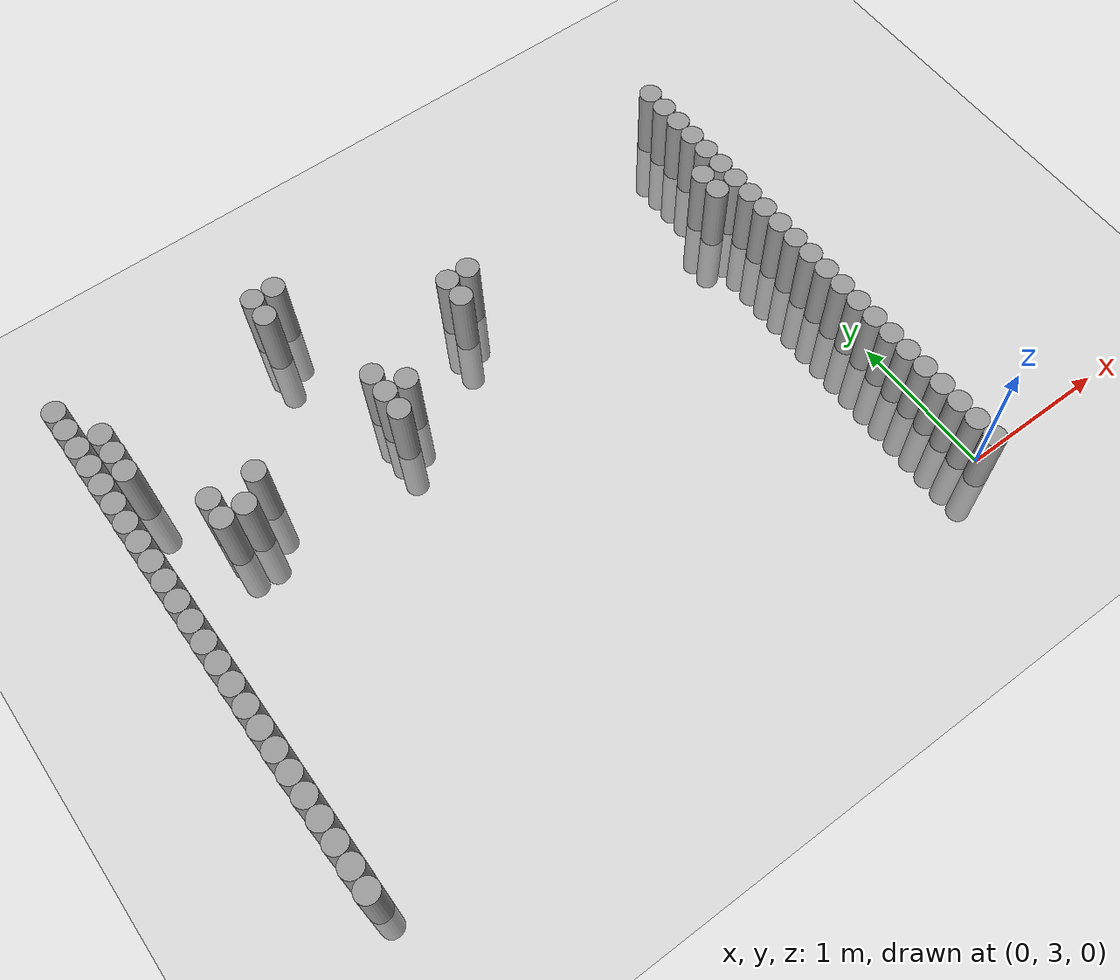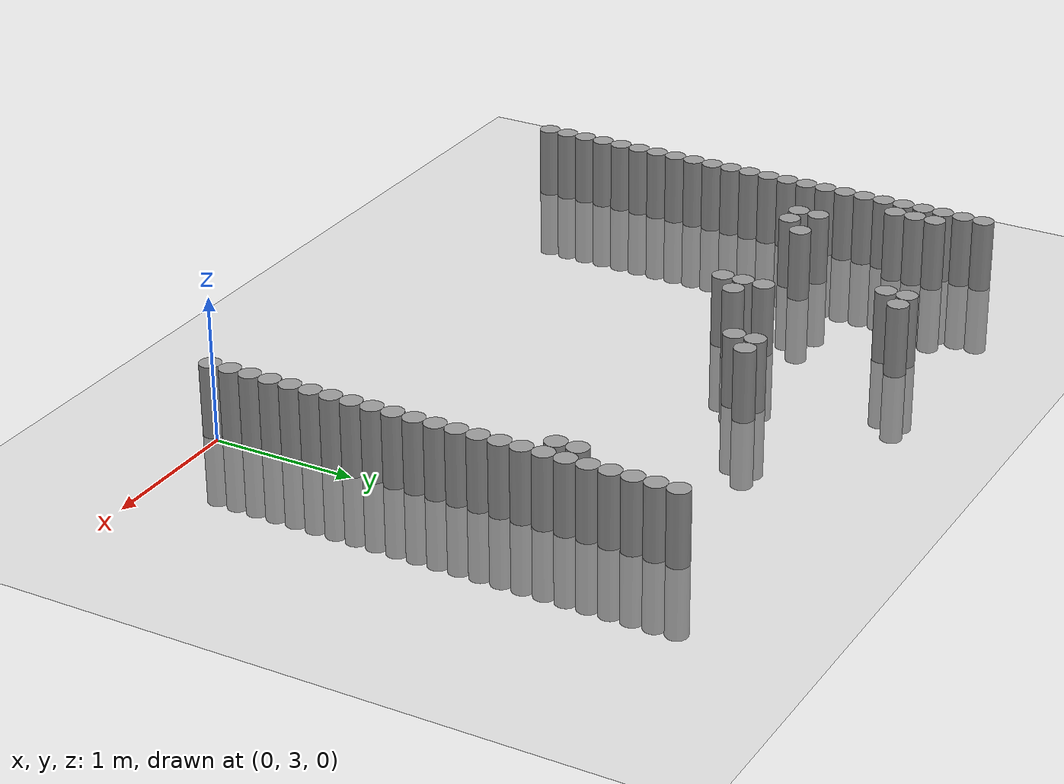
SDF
<sdf version="1.6">
 <world name="default">
  <model name="ground_plane">
   <static>1</static>
   <link name="link">
    <collision name="collision">
     <geometry><plane><normal>0 0 1</normal><size>100 100</size></plane></geometry>
     <surface><friction><ode><mu>100</mu><mu2>50</mu2></ode></friction></surface>
    </collision>
    <visual name="visual">
     <cast_shadows>0</cast_shadows>
     <geometry><plane><normal>0 0 1</normal><size>100 100</size></plane></geometry>
     <material>
      <script><uri>file://media/materials/scripts/gazebo.material</uri><name>Gazebo/Grey</name></script>
     </material>
    </visual>
   </link>
  </model>
  <model name="unit_cylinder_66">
   <pose>-0.075000 2.925000 0.000000 0.000000 0.000000 0.000000</pose>
   <link name="link">
    <inertial>
     <mass>1</mass>
     <inertia><ixx>0.145833</ixx><ixy>0</ixy><ixz>0</ixz><iyy>0.145833</iyy><iyz>0</iyz><izz>0.125</izz></inertia>
    </inertial>
    <collision name="collision">
     <geometry><cylinder><radius>0.075000</radius><length>1</length></cylinder></geometry>
    </collision>
    <visual name="visual">
     <geometry><cylinder><radius>0.075000</radius><length>1</length></cylinder></geometry>
     <material>
      <script><name>Gazebo/Grey</name><uri>file://media/materials/scripts/gazebo.material</uri></script>
     </material>
    </visual>
   </link>
  </model>
  <model name="unit_cylinder_67">
   <pose>-4.425000 2.925000 0.000000 0.000000 0.000000 0.000000</pose>
   <link name="link">
    <inertial>
     <mass>1</mass>
     <inertia><ixx>0.145833</ixx><ixy>0</ixy><ixz>0</ixz><iyy>0.145833</iyy><iyz>0</iyz><izz>0.125</izz></inertia>
    </inertial>
    <collision name="collision">
     <geometry><cylinder><radius>0.075000</radius><length>1</length></cylinder></geometry>
    </collision>
    <visual name="visual">
     <geometry><cylinder><radius>0.075000</radius><length>1</length></cylinder></geometry>
     <material>
      <script><name>Gazebo/Grey</name><uri>file://media/materials/scripts/gazebo.material</uri></script>
     </material>
    </visual>
   </link>
  </model>
  <model name="unit_cylinder_68">
   <pose>-0.075000 3.075000 0.000000 0.000000 0.000000 0.000000</pose>
   <link name="link">
    <inertial>
     <mass>1</mass>
     <inertia><ixx>0.145833</ixx><ixy>0</ixy><ixz>0</ixz><iyy>0.145833</iyy><iyz>0</iyz><izz>0.125</izz></inertia>
    </inertial>
    <collision name="collision">
     <geometry><cylinder><radius>0.075000</radius><length>1</length></cylinder></geometry>
    </collision>
    <visual name="visual">
     <geometry><cylinder><radius>0.075000</radius><length>1</length></cylinder></geometry>
     <material>
      <script><name>Gazebo/Grey</name><uri>file://media/materials/scripts/gazebo.material</uri></script>
     </material>
    </visual>
   </link>
  </model>
  <model name="unit_cylinder_69">
   <pose>-4.425000 3.075000 0.000000 0.000000 0.000000 0.000000</pose>
   <link name="link">
    <inertial>
     <mass>1</mass>
     <inertia><ixx>0.145833</ixx><ixy>0</ixy><ixz>0</ixz><iyy>0.145833</iyy><iyz>0</iyz><izz>0.125</izz></inertia>
    </inertial>
    <collision name="collision">
     <geometry><cylinder><radius>0.075000</radius><length>1</length></cylinder></geometry>
    </collision>
    <visual name="visual">
     <geometry><cylinder><radius>0.075000</radius><length>1</length></cylinder></geometry>
     <material>
      <script><name>Gazebo/Grey</name><uri>file://media/materials/scripts/gazebo.material</uri></script>
     </material>
    </visual>
   </link>
  </model>
  <model name="unit_cylinder_70">
   <pose>-0.075000 3.225000 0.000000 0.000000 0.000000 0.000000</pose>
   <link name="link">
    <inertial>
     <mass>1</mass>
     <inertia><ixx>0.145833</ixx><ixy>0</ixy><ixz>0</ixz><iyy>0.145833</iyy><iyz>0</iyz><izz>0.125</izz></inertia>
    </inertial>
    <collision name="collision">
     <geometry><cylinder><radius>0.075000</radius><length>1</length></cylinder></geometry>
    </collision>
    <visual name="visual">
     <geometry><cylinder><radius>0.075000</radius><length>1</length></cylinder></geometry>
     <material>
      <script><name>Gazebo/Grey</name><uri>file://media/materials/scripts/gazebo.material</uri></script>
     </material>
    </visual>
   </link>
  </model>
  <model name="unit_cylinder_71">
   <pose>-4.425000 3.225000 0.000000 0.000000 0.000000 0.000000</pose>
   <link name="link">
    <inertial>
     <mass>1</mass>
     <inertia><ixx>0.145833</ixx><ixy>0</ixy><ixz>0</ixz><iyy>0.145833</iyy><iyz>0</iyz><izz>0.125</izz></inertia>
    </inertial>
    <collision name="collision">
     <geometry><cylinder><radius>0.075000</radius><length>1</length></cylinder></geometry>
    </collision>
    <visual name="visual">
     <geometry><cylinder><radius>0.075000</radius><length>1</length></cylinder></geometry>
     <material>
      <script><name>Gazebo/Grey</name><uri>file://media/materials/scripts/gazebo.material</uri></script>
     </material>
    </visual>
   </link>
  </model>
  <model name="unit_cylinder_72">
   <pose>-0.075000 3.375000 0.000000 0.000000 0.000000 0.000000</pose>
   <link name="link">
    <inertial>
     <mass>1</mass>
     <inertia><ixx>0.145833</ixx><ixy>0</ixy><ixz>0</ixz><iyy>0.145833</iyy><iyz>0</iyz><izz>0.125</izz></inertia>
    </inertial>
    <collision name="collision">
     <geometry><cylinder><radius>0.075000</radius><length>1</length></cylinder></geometry>
    </collision>
    <visual name="visual">
     <geometry><cylinder><radius>0.075000</radius><length>1</length></cylinder></geometry>
     <material>
      <script><name>Gazebo/Grey</name><uri>file://media/materials/scripts/gazebo.material</uri></script>
     </material>
    </visual>
   </link>
  </model>
  <model name="unit_cylinder_73">
   <pose>-4.425000 3.375000 0.000000 0.000000 0.000000 0.000000</pose>
   <link name="link">
    <inertial>
     <mass>1</mass>
     <inertia><ixx>0.145833</ixx><ixy>0</ixy><ixz>0</ixz><iyy>0.145833</iyy><iyz>0</iyz><izz>0.125</izz></inertia>
    </inertial>
    <collision name="collision">
     <geometry><cylinder><radius>0.075000</radius><length>1</length></cylinder></geometry>
    </collision>
    <visual name="visual">
     <geometry><cylinder><radius>0.075000</radius><length>1</length></cylinder></geometry>
     <material>
      <script><name>Gazebo/Grey</name><uri>file://media/materials/scripts/gazebo.material</uri></script>
     </material>
    </visual>
   </link>
  </model>
  <model name="unit_cylinder_74">
   <pose>-0.075000 3.525000 0.000000 0.000000 0.000000 0.000000</pose>
   <link name="link">
    <inertial>
     <mass>1</mass>
     <inertia><ixx>0.145833</ixx><ixy>0</ixy><ixz>0</ixz><iyy>0.145833</iyy><iyz>0</iyz><izz>0.125</izz></inertia>
    </inertial>
    <collision name="collision">
     <geometry><cylinder><radius>0.075000</radius><length>1</length></cylinder></geometry>
    </collision>
    <visual name="visual">
     <geometry><cylinder><radius>0.075000</radius><length>1</length></cylinder></geometry>
     <material>
      <script><name>Gazebo/Grey</name><uri>file://media/materials/scripts/gazebo.material</uri></script>
     </material>
    </visual>
   </link>
  </model>
  <model name="unit_cylinder_75">
   <pose>-4.425000 3.525000 0.000000 0.000000 0.000000 0.000000</pose>
   <link name="link">
    <inertial>
     <mass>1</mass>
     <inertia><ixx>0.145833</ixx><ixy>0</ixy><ixz>0</ixz><iyy>0.145833</iyy><iyz>0</iyz><izz>0.125</izz></inertia>
    </inertial>
    <collision name="collision">
     <geometry><cylinder><radius>0.075000</radius><length>1</length></cylinder></geometry>
    </collision>
    <visual name="visual">
     <geometry><cylinder><radius>0.075000</radius><length>1</length></cylinder></geometry>
     <material>
      <script><name>Gazebo/Grey</name><uri>file://media/materials/scripts/gazebo.material</uri></script>
     </material>
    </visual>
   </link>
  </model>
  <model name="unit_cylinder_76">
   <pose>-0.075000 3.675000 0.000000 0.000000 0.000000 0.000000</pose>
   <link name="link">
    <inertial>
     <mass>1</mass>
     <inertia><ixx>0.145833</ixx><ixy>0</ixy><ixz>0</ixz><iyy>0.145833</iyy><iyz>0</iyz><izz>0.125</izz></inertia>
    </inertial>
    <collision name="collision">
     <geometry><cylinder><radius>0.075000</radius><length>1</length></cylinder></geometry>
    </collision>
    <visual name="visual">
     <geometry><cylinder><radius>0.075000</radius><length>1</length></cylinder></geometry>
     <material>
      <script><name>Gazebo/Grey</name><uri>file://media/materials/scripts/gazebo.material</uri></script>
     </material>
    </visual>
   </link>
  </model>
  <model name="unit_cylinder_77">
   <pose>-4.425000 3.675000 0.000000 0.000000 0.000000 0.000000</pose>
   <link name="link">
    <inertial>
     <mass>1</mass>
     <inertia><ixx>0.145833</ixx><ixy>0</ixy><ixz>0</ixz><iyy>0.145833</iyy><iyz>0</iyz><izz>0.125</izz></inertia>
    </inertial>
    <collision name="collision">
     <geometry><cylinder><radius>0.075000</radius><length>1</length></cylinder></geometry>
    </collision>
    <visual name="visual">
     <geometry><cylinder><radius>0.075000</radius><length>1</length></cylinder></geometry>
     <material>
      <script><name>Gazebo/Grey</name><uri>file://media/materials/scripts/gazebo.material</uri></script>
     </material>
    </visual>
   </link>
  </model>
  <model name="unit_cylinder_78">
   <pose>-0.075000 3.825000 0.000000 0.000000 0.000000 0.000000</pose>
   <link name="link">
    <inertial>
     <mass>1</mass>
     <inertia><ixx>0.145833</ixx><ixy>0</ixy><ixz>0</ixz><iyy>0.145833</iyy><iyz>0</iyz><izz>0.125</izz></inertia>
    </inertial>
    <collision name="collision">
     <geometry><cylinder><radius>0.075000</radius><length>1</length></cylinder></geometry>
    </collision>
    <visual name="visual">
     <geometry><cylinder><radius>0.075000</radius><length>1</length></cylinder></geometry>
     <material>
      <script><name>Gazebo/Grey</name><uri>file://media/materials/scripts/gazebo.material</uri></script>
     </material>
    </visual>
   </link>
  </model>
  <model name="unit_cylinder_79">
   <pose>-4.425000 3.825000 0.000000 0.000000 0.000000 0.000000</pose>
   <link name="link">
    <inertial>
     <mass>1</mass>
     <inertia><ixx>0.145833</ixx><ixy>0</ixy><ixz>0</ixz><iyy>0.145833</iyy><iyz>0</iyz><izz>0.125</izz></inertia>
    </inertial>
    <collision name="collision">
     <geometry><cylinder><radius>0.075000</radius><length>1</length></cylinder></geometry>
    </collision>
    <visual name="visual">
     <geometry><cylinder><radius>0.075000</radius><length>1</length></cylinder></geometry>
     <material>
      <script><name>Gazebo/Grey</name><uri>file://media/materials/scripts/gazebo.material</uri></script>
     </material>
    </visual>
   </link>
  </model>
  <model name="unit_cylinder_80">
   <pose>-0.075000 3.975000 0.000000 0.000000 0.000000 0.000000</pose>
   <link name="link">
    <inertial>
     <mass>1</mass>
     <inertia><ixx>0.145833</ixx><ixy>0</ixy><ixz>0</ixz><iyy>0.145833</iyy><iyz>0</iyz><izz>0.125</izz></inertia>
    </inertial>
    <collision name="collision">
     <geometry><cylinder><radius>0.075000</radius><length>1</length></cylinder></geometry>
    </collision>
    <visual name="visual">
     <geometry><cylinder><radius>0.075000</radius><length>1</length></cylinder></geometry>
     <material>
      <script><name>Gazebo/Grey</name><uri>file://media/materials/scripts/gazebo.material</uri></script>
     </material>
    </visual>
   </link>
  </model>
  <model name="unit_cylinder_81">
   <pose>-4.425000 3.975000 0.000000 0.000000 0.000000 0.000000</pose>
   <link name="link">
    <inertial>
     <mass>1</mass>
     <inertia><ixx>0.145833</ixx><ixy>0</ixy><ixz>0</ixz><iyy>0.145833</iyy><iyz>0</iyz><izz>0.125</izz></inertia>
    </inertial>
    <collision name="collision">
     <geometry><cylinder><radius>0.075000</radius><length>1</length></cylinder></geometry>
    </collision>
    <visual name="visual">
     <geometry><cylinder><radius>0.075000</radius><length>1</length></cylinder></geometry>
     <material>
      <script><name>Gazebo/Grey</name><uri>file://media/materials/scripts/gazebo.material</uri></script>
     </material>
    </visual>
   </link>
  </model>
  <model name="unit_cylinder_82">
   <pose>-0.075000 4.125000 0.000000 0.000000 0.000000 0.000000</pose>
   <link name="link">
    <inertial>
     <mass>1</mass>
     <inertia><ixx>0.145833</ixx><ixy>0</ixy><ixz>0</ixz><iyy>0.145833</iyy><iyz>0</iyz><izz>0.125</izz></inertia>
    </inertial>
    <collision name="collision">
     <geometry><cylinder><radius>0.075000</radius><length>1</length></cylinder></geometry>
    </collision>
    <visual name="visual">
     <geometry><cylinder><radius>0.075000</radius><length>1</length></cylinder></geometry>
     <material>
      <script><name>Gazebo/Grey</name><uri>file://media/materials/scripts/gazebo.material</uri></script>
     </material>
    </visual>
   </link>
  </model>
  <model name="unit_cylinder_83">
   <pose>-4.425000 4.125000 0.000000 0.000000 0.000000 0.000000</pose>
   <link name="link">
    <inertial>
     <mass>1</mass>
     <inertia><ixx>0.145833</ixx><ixy>0</ixy><ixz>0</ixz><iyy>0.145833</iyy><iyz>0</iyz><izz>0.125</izz></inertia>
    </inertial>
    <collision name="collision">
     <geometry><cylinder><radius>0.075000</radius><length>1</length></cylinder></geometry>
    </collision>
    <visual name="visual">
     <geometry><cylinder><radius>0.075000</radius><length>1</length></cylinder></geometry>
     <material>
      <script><name>Gazebo/Grey</name><uri>file://media/materials/scripts/gazebo.material</uri></script>
     </material>
    </visual>
   </link>
  </model>
  <model name="unit_cylinder_84">
   <pose>-0.075000 4.275000 0.000000 0.000000 0.000000 0.000000</pose>
   <link name="link">
    <inertial>
     <mass>1</mass>
     <inertia><ixx>0.145833</ixx><ixy>0</ixy><ixz>0</ixz><iyy>0.145833</iyy><iyz>0</iyz><izz>0.125</izz></inertia>
    </inertial>
    <collision name="collision">
     <geometry><cylinder><radius>0.075000</radius><length>1</length></cylinder></geometry>
    </collision>
    <visual name="visual">
     <geometry><cylinder><radius>0.075000</radius><length>1</length></cylinder></geometry>
     <material>
      <script><name>Gazebo/Grey</name><uri>file://media/materials/scripts/gazebo.material</uri></script>
     </material>
    </visual>
   </link>
  </model>
  <model name="unit_cylinder_85">
   <pose>-4.425000 4.275000 0.000000 0.000000 0.000000 0.000000</pose>
   <link name="link">
    <inertial>
     <mass>1</mass>
     <inertia><ixx>0.145833</ixx><ixy>0</ixy><ixz>0</ixz><iyy>0.145833</iyy><iyz>0</iyz><izz>0.125</izz></inertia>
    </inertial>
    <collision name="collision">
     <geometry><cylinder><radius>0.075000</radius><length>1</length></cylinder></geometry>
    </collision>
    <visual name="visual">
     <geometry><cylinder><radius>0.075000</radius><length>1</length></cylinder></geometry>
     <material>
      <script><name>Gazebo/Grey</name><uri>file://media/materials/scripts/gazebo.material</uri></script>
     </material>
    </visual>
   </link>
  </model>
  <model name="unit_cylinder_86">
   <pose>-0.075000 4.425000 0.000000 0.000000 0.000000 0.000000</pose>
   <link name="link">
    <inertial>
     <mass>1</mass>
     <inertia><ixx>0.145833</ixx><ixy>0</ixy><ixz>0</ixz><iyy>0.145833</iyy><iyz>0</iyz><izz>0.125</izz></inertia>
    </inertial>
    <collision name="collision">
     <geometry><cylinder><radius>0.075000</radius><length>1</length></cylinder></geometry>
    </collision>
    <visual name="visual">
     <geometry><cylinder><radius>0.075000</radius><length>1</length></cylinder></geometry>
     <material>
      <script><name>Gazebo/Grey</name><uri>file://media/materials/scripts/gazebo.material</uri></script>
     </material>
    </visual>
   </link>
  </model>
  <model name="unit_cylinder_87">
   <pose>-4.425000 4.425000 0.000000 0.000000 0.000000 0.000000</pose>
   <link name="link">
    <inertial>
     <mass>1</mass>
     <inertia><ixx>0.145833</ixx><ixy>0</ixy><ixz>0</ixz><iyy>0.145833</iyy><iyz>0</iyz><izz>0.125</izz></inertia>
    </inertial>
    <collision name="collision">
     <geometry><cylinder><radius>0.075000</radius><length>1</length></cylinder></geometry>
    </collision>
    <visual name="visual">
     <geometry><cylinder><radius>0.075000</radius><length>1</length></cylinder></geometry>
     <material>
      <script><name>Gazebo/Grey</name><uri>file://media/materials/scripts/gazebo.material</uri></script>
     </material>
    </visual>
   </link>
  </model>
  <model name="unit_cylinder_88">
   <pose>-0.075000 4.575000 0.000000 0.000000 0.000000 0.000000</pose>
   <link name="link">
    <inertial>
     <mass>1</mass>
     <inertia><ixx>0.145833</ixx><ixy>0</ixy><ixz>0</ixz><iyy>0.145833</iyy><iyz>0</iyz><izz>0.125</izz></inertia>
    </inertial>
    <collision name="collision">
     <geometry><cylinder><radius>0.075000</radius><length>1</length></cylinder></geometry>
    </collision>
    <visual name="visual">
     <geometry><cylinder><radius>0.075000</radius><length>1</length></cylinder></geometry>
     <material>
      <script><name>Gazebo/Grey</name><uri>file://media/materials/scripts/gazebo.material</uri></script>
     </material>
    </visual>
   </link>
  </model>
  <model name="unit_cylinder_89">
   <pose>-4.425000 4.575000 0.000000 0.000000 0.000000 0.000000</pose>
   <link name="link">
    <inertial>
     <mass>1</mass>
     <inertia><ixx>0.145833</ixx><ixy>0</ixy><ixz>0</ixz><iyy>0.145833</iyy><iyz>0</iyz><izz>0.125</izz></inertia>
    </inertial>
    <collision name="collision">
     <geometry><cylinder><radius>0.075000</radius><length>1</length></cylinder></geometry>
    </collision>
    <visual name="visual">
     <geometry><cylinder><radius>0.075000</radius><length>1</length></cylinder></geometry>
     <material>
      <script><name>Gazebo/Grey</name><uri>file://media/materials/scripts/gazebo.material</uri></script>
     </material>
    </visual>
   </link>
  </model>
  <model name="unit_cylinder_90">
   <pose>-0.075000 4.725000 0.000000 0.000000 0.000000 0.000000</pose>
   <link name="link">
    <inertial>
     <mass>1</mass>
     <inertia><ixx>0.145833</ixx><ixy>0</ixy><ixz>0</ixz><iyy>0.145833</iyy><iyz>0</iyz><izz>0.125</izz></inertia>
    </inertial>
    <collision name="collision">
     <geometry><cylinder><radius>0.075000</radius><length>1</length></cylinder></geometry>
    </collision>
    <visual name="visual">
     <geometry><cylinder><radius>0.075000</radius><length>1</length></cylinder></geometry>
     <material>
      <script><name>Gazebo/Grey</name><uri>file://media/materials/scripts/gazebo.material</uri></script>
     </material>
    </visual>
   </link>
  </model>
  <model name="unit_cylinder_91">
   <pose>-4.425000 4.725000 0.000000 0.000000 0.000000 0.000000</pose>
   <link name="link">
    <inertial>
     <mass>1</mass>
     <inertia><ixx>0.145833</ixx><ixy>0</ixy><ixz>0</ixz><iyy>0.145833</iyy><iyz>0</iyz><izz>0.125</izz></inertia>
    </inertial>
    <collision name="collision">
     <geometry><cylinder><radius>0.075000</radius><length>1</length></cylinder></geometry>
    </collision>
    <visual name="visual">
     <geometry><cylinder><radius>0.075000</radius><length>1</length></cylinder></geometry>
     <material>
      <script><name>Gazebo/Grey</name><uri>file://media/materials/scripts/gazebo.material</uri></script>
     </material>
    </visual>
   </link>
  </model>
  <model name="unit_cylinder_92">
   <pose>-0.075000 4.875000 0.000000 0.000000 0.000000 0.000000</pose>
   <link name="link">
    <inertial>
     <mass>1</mass>
     <inertia><ixx>0.145833</ixx><ixy>0</ixy><ixz>0</ixz><iyy>0.145833</iyy><iyz>0</iyz><izz>0.125</izz></inertia>
    </inertial>
    <collision name="collision">
     <geometry><cylinder><radius>0.075000</radius><length>1</length></cylinder></geometry>
    </collision>
    <visual name="visual">
     <geometry><cylinder><radius>0.075000</radius><length>1</length></cylinder></geometry>
     <material>
      <script><name>Gazebo/Grey</name><uri>file://media/materials/scripts/gazebo.material</uri></script>
     </material>
    </visual>
   </link>
  </model>
  <model name="unit_cylinder_93">
   <pose>-4.425000 4.875000 0.000000 0.000000 0.000000 0.000000</pose>
   <link name="link">
    <inertial>
     <mass>1</mass>
     <inertia><ixx>0.145833</ixx><ixy>0</ixy><ixz>0</ixz><iyy>0.145833</iyy><iyz>0</iyz><izz>0.125</izz></inertia>
    </inertial>
    <collision name="collision">
     <geometry><cylinder><radius>0.075000</radius><length>1</length></cylinder></geometry>
    </collision>
    <visual name="visual">
     <geometry><cylinder><radius>0.075000</radius><length>1</length></cylinder></geometry>
     <material>
      <script><name>Gazebo/Grey</name><uri>file://media/materials/scripts/gazebo.material</uri></script>
     </material>
    </visual>
   </link>
  </model>
  <model name="unit_cylinder_94">
   <pose>-0.075000 5.025000 0.000000 0.000000 0.000000 0.000000</pose>
   <link name="link">
    <inertial>
     <mass>1</mass>
     <inertia><ixx>0.145833</ixx><ixy>0</ixy><ixz>0</ixz><iyy>0.145833</iyy><iyz>0</iyz><izz>0.125</izz></inertia>
    </inertial>
    <collision name="collision">
     <geometry><cylinder><radius>0.075000</radius><length>1</length></cylinder></geometry>
    </collision>
    <visual name="visual">
     <geometry><cylinder><radius>0.075000</radius><length>1</length></cylinder></geometry>
     <material>
      <script><name>Gazebo/Grey</name><uri>file://media/materials/scripts/gazebo.material</uri></script>
     </material>
    </visual>
   </link>
  </model>
  <model name="unit_cylinder_95">
   <pose>-4.425000 5.025000 0.000000 0.000000 0.000000 0.000000</pose>
   <link name="link">
    <inertial>
     <mass>1</mass>
     <inertia><ixx>0.145833</ixx><ixy>0</ixy><ixz>0</ixz><iyy>0.145833</iyy><iyz>0</iyz><izz>0.125</izz></inertia>
    </inertial>
    <collision name="collision">
     <geometry><cylinder><radius>0.075000</radius><length>1</length></cylinder></geometry>
    </collision>
    <visual name="visual">
     <geometry><cylinder><radius>0.075000</radius><length>1</length></cylinder></geometry>
     <material>
      <script><name>Gazebo/Grey</name><uri>file://media/materials/scripts/gazebo.material</uri></script>
     </material>
    </visual>
   </link>
  </model>
  <model name="unit_cylinder_96">
   <pose>-4.425000 5.175000 0.000000 0.000000 0.000000 0.000000</pose>
   <link name="link">
    <inertial>
     <mass>1</mass>
     <inertia><ixx>0.145833</ixx><ixy>0</ixy><ixz>0</ixz><iyy>0.145833</iyy><iyz>0</iyz><izz>0.125</izz></inertia>
    </inertial>
    <collision name="collision">
     <geometry><cylinder><radius>0.075000</radius><length>1</length></cylinder></geometry>
    </collision>
    <visual name="visual">
     <geometry><cylinder><radius>0.075000</radius><length>1</length></cylinder></geometry>
     <material>
      <script><name>Gazebo/Grey</name><uri>file://media/materials/scripts/gazebo.material</uri></script>
     </material>
    </visual>
   </link>
  </model>
  <model name="unit_cylinder_97">
   <pose>-4.425000 5.325000 0.000000 0.000000 0.000000 0.000000</pose>
   <link name="link">
    <inertial>
     <mass>1</mass>
     <inertia><ixx>0.145833</ixx><ixy>0</ixy><ixz>0</ixz><iyy>0.145833</iyy><iyz>0</iyz><izz>0.125</izz></inertia>
    </inertial>
    <collision name="collision">
     <geometry><cylinder><radius>0.075000</radius><length>1</length></cylinder></geometry>
    </collision>
    <visual name="visual">
     <geometry><cylinder><radius>0.075000</radius><length>1</length></cylinder></geometry>
     <material>
      <script><name>Gazebo/Grey</name><uri>file://media/materials/scripts/gazebo.material</uri></script>
     </material>
    </visual>
   </link>
  </model>
  <model name="unit_cylinder_98">
   <pose>-4.425000 5.475000 0.000000 0.000000 0.000000 0.000000</pose>
   <link name="link">
    <inertial>
     <mass>1</mass>
     <inertia><ixx>0.145833</ixx><ixy>0</ixy><ixz>0</ixz><iyy>0.145833</iyy><iyz>0</iyz><izz>0.125</izz></inertia>
    </inertial>
    <collision name="collision">
     <geometry><cylinder><radius>0.075000</radius><length>1</length></cylinder></geometry>
    </collision>
    <visual name="visual">
     <geometry><cylinder><radius>0.075000</radius><length>1</length></cylinder></geometry>
     <material>
      <script><name>Gazebo/Grey</name><uri>file://media/materials/scripts/gazebo.material</uri></script>
     </material>
    </visual>
   </link>
  </model>
  <model name="unit_cylinder_99">
   <pose>-4.425000 5.625000 0.000000 0.000000 0.000000 0.000000</pose>
   <link name="link">
    <inertial>
     <mass>1</mass>
     <inertia><ixx>0.145833</ixx><ixy>0</ixy><ixz>0</ixz><iyy>0.145833</iyy><iyz>0</iyz><izz>0.125</izz></inertia>
    </inertial>
    <collision name="collision">
     <geometry><cylinder><radius>0.075000</radius><length>1</length></cylinder></geometry>
    </collision>
    <visual name="visual">
     <geometry><cylinder><radius>0.075000</radius><length>1</length></cylinder></geometry>
     <material>
      <script><name>Gazebo/Grey</name><uri>file://media/materials/scripts/gazebo.material</uri></script>
     </material>
    </visual>
   </link>
  </model>
  <model name="unit_cylinder_100">
   <pose>-4.425000 5.775000 0.000000 0.000000 0.000000 0.000000</pose>
   <link name="link">
    <inertial>
     <mass>1</mass>
     <inertia><ixx>0.145833</ixx><ixy>0</ixy><ixz>0</ixz><iyy>0.145833</iyy><iyz>0</iyz><izz>0.125</izz></inertia>
    </inertial>
    <collision name="collision">
     <geometry><cylinder><radius>0.075000</radius><length>1</length></cylinder></geometry>
    </collision>
    <visual name="visual">
     <geometry><cylinder><radius>0.075000</radius><length>1</length></cylinder></geometry>
     <material>
      <script><name>Gazebo/Grey</name><uri>file://media/materials/scripts/gazebo.material</uri></script>
     </material>
    </visual>
   </link>
  </model>
  <model name="unit_cylinder_101">
   <pose>-4.425000 5.925000 0.000000 0.000000 0.000000 0.000000</pose>
   <link name="link">
    <inertial>
     <mass>1</mass>
     <inertia><ixx>0.145833</ixx><ixy>0</ixy><ixz>0</ixz><iyy>0.145833</iyy><iyz>0</iyz><izz>0.125</izz></inertia>
    </inertial>
    <collision name="collision">
     <geometry><cylinder><radius>0.075000</radius><length>1</length></cylinder></geometry>
    </collision>
    <visual name="visual">
     <geometry><cylinder><radius>0.075000</radius><length>1</length></cylinder></geometry>
     <material>
      <script><name>Gazebo/Grey</name><uri>file://media/materials/scripts/gazebo.material</uri></script>
     </material>
    </visual>
   </link>
  </model>
  <model name="unit_cylinder_102">
   <pose>-4.425000 6.075000 0.000000 0.000000 0.000000 0.000000</pose>
   <link name="link">
    <inertial>
     <mass>1</mass>
     <inertia><ixx>0.145833</ixx><ixy>0</ixy><ixz>0</ixz><iyy>0.145833</iyy><iyz>0</iyz><izz>0.125</izz></inertia>
    </inertial>
    <collision name="collision">
     <geometry><cylinder><radius>0.075000</radius><length>1</length></cylinder></geometry>
    </collision>
    <visual name="visual">
     <geometry><cylinder><radius>0.075000</radius><length>1</length></cylinder></geometry>
     <material>
      <script><name>Gazebo/Grey</name><uri>file://media/materials/scripts/gazebo.material</uri></script>
     </material>
    </visual>
   </link>
  </model>
  <model name="unit_cylinder_103">
   <pose>-4.425000 6.225000 0.000000 0.000000 0.000000 0.000000</pose>
   <link name="link">
    <inertial>
     <mass>1</mass>
     <inertia><ixx>0.145833</ixx><ixy>0</ixy><ixz>0</ixz><iyy>0.145833</iyy><iyz>0</iyz><izz>0.125</izz></inertia>
    </inertial>
    <collision name="collision">
     <geometry><cylinder><radius>0.075000</radius><length>1</length></cylinder></geometry>
    </collision>
    <visual name="visual">
     <geometry><cylinder><radius>0.075000</radius><length>1</length></cylinder></geometry>
     <material>
      <script><name>Gazebo/Grey</name><uri>file://media/materials/scripts/gazebo.material</uri></script>
     </material>
    </visual>
   </link>
  </model>
  <model name="unit_cylinder_104">
   <pose>-4.425000 6.375000 0.000000 0.000000 0.000000 0.000000</pose>
   <link name="link">
    <inertial>
     <mass>1</mass>
     <inertia><ixx>0.145833</ixx><ixy>0</ixy><ixz>0</ixz><iyy>0.145833</iyy><iyz>0</iyz><izz>0.125</izz></inertia>
    </inertial>
    <collision name="collision">
     <geometry><cylinder><radius>0.075000</radius><length>1</length></cylinder></geometry>
    </collision>
    <visual name="visual">
     <geometry><cylinder><radius>0.075000</radius><length>1</length></cylinder></geometry>
     <material>
      <script><name>Gazebo/Grey</name><uri>file://media/materials/scripts/gazebo.material</uri></script>
     </material>
    </visual>
   </link>
  </model>
  <model name="unit_cylinder_126">
   <pose>-4.275000 5.775000 0.000000 0.000000 0.000000 0.000000</pose>
   <link name="link">
    <inertial>
     <mass>1</mass>
     <inertia><ixx>0.145833</ixx><ixy>0</ixy><ixz>0</ixz><iyy>0.145833</iyy><iyz>0</iyz><izz>0.125</izz></inertia>
    </inertial>
    <collision name="collision">
     <geometry><cylinder><radius>0.075000</radius><length>1</length></cylinder></geometry>
    </collision>
    <visual name="visual">
     <geometry><cylinder><radius>0.075000</radius><length>1</length></cylinder></geometry>
     <material>
      <script><name>Gazebo/Grey</name><uri>file://media/materials/scripts/gazebo.material</uri></script>
     </material>
    </visual>
   </link>
  </model>
  <model name="unit_cylinder_127">
   <pose>-4.275000 5.925000 0.000000 0.000000 0.000000 0.000000</pose>
   <link name="link">
    <inertial>
     <mass>1</mass>
     <inertia><ixx>0.145833</ixx><ixy>0</ixy><ixz>0</ixz><iyy>0.145833</iyy><iyz>0</iyz><izz>0.125</izz></inertia>
    </inertial>
    <collision name="collision">
     <geometry><cylinder><radius>0.075000</radius><length>1</length></cylinder></geometry>
    </collision>
    <visual name="visual">
     <geometry><cylinder><radius>0.075000</radius><length>1</length></cylinder></geometry>
     <material>
      <script><name>Gazebo/Grey</name><uri>file://media/materials/scripts/gazebo.material</uri></script>
     </material>
    </visual>
   </link>
  </model>
  <model name="unit_cylinder_128">
   <pose>-4.275000 6.075000 0.000000 0.000000 0.000000 0.000000</pose>
   <link name="link">
    <inertial>
     <mass>1</mass>
     <inertia><ixx>0.145833</ixx><ixy>0</ixy><ixz>0</ixz><iyy>0.145833</iyy><iyz>0</iyz><izz>0.125</izz></inertia>
    </inertial>
    <collision name="collision">
     <geometry><cylinder><radius>0.075000</radius><length>1</length></cylinder></geometry>
    </collision>
    <visual name="visual">
     <geometry><cylinder><radius>0.075000</radius><length>1</length></cylinder></geometry>
     <material>
      <script><name>Gazebo/Grey</name><uri>file://media/materials/scripts/gazebo.material</uri></script>
     </material>
    </visual>
   </link>
  </model>
  <model name="unit_cylinder_140">
   <pose>-3.975000 5.175000 0.000000 0.000000 0.000000 0.000000</pose>
   <link name="link">
    <inertial>
     <mass>1</mass>
     <inertia><ixx>0.145833</ixx><ixy>0</ixy><ixz>0</ixz><iyy>0.145833</iyy><iyz>0</iyz><izz>0.125</izz></inertia>
    </inertial>
    <collision name="collision">
     <geometry><cylinder><radius>0.075000</radius><length>1</length></cylinder></geometry>
    </collision>
    <visual name="visual">
     <geometry><cylinder><radius>0.075000</radius><length>1</length></cylinder></geometry>
     <material>
      <script><name>Gazebo/Grey</name><uri>file://media/materials/scripts/gazebo.material</uri></script>
     </material>
    </visual>
   </link>
  </model>
  <model name="unit_cylinder_141">
   <pose>-3.975000 5.325000 0.000000 0.000000 0.000000 0.000000</pose>
   <link name="link">
    <inertial>
     <mass>1</mass>
     <inertia><ixx>0.145833</ixx><ixy>0</ixy><ixz>0</ixz><iyy>0.145833</iyy><iyz>0</iyz><izz>0.125</izz></inertia>
    </inertial>
    <collision name="collision">
     <geometry><cylinder><radius>0.075000</radius><length>1</length></cylinder></geometry>
    </collision>
    <visual name="visual">
     <geometry><cylinder><radius>0.075000</radius><length>1</length></cylinder></geometry>
     <material>
      <script><name>Gazebo/Grey</name><uri>file://media/materials/scripts/gazebo.material</uri></script>
     </material>
    </visual>
   </link>
  </model>
  <model name="unit_cylinder_145">
   <pose>-3.825000 5.175000 0.000000 0.000000 0.000000 0.000000</pose>
   <link name="link">
    <inertial>
     <mass>1</mass>
     <inertia><ixx>0.145833</ixx><ixy>0</ixy><ixz>0</ixz><iyy>0.145833</iyy><iyz>0</iyz><izz>0.125</izz></inertia>
    </inertial>
    <collision name="collision">
     <geometry><cylinder><radius>0.075000</radius><length>1</length></cylinder></geometry>
    </collision>
    <visual name="visual">
     <geometry><cylinder><radius>0.075000</radius><length>1</length></cylinder></geometry>
     <material>
      <script><name>Gazebo/Grey</name><uri>file://media/materials/scripts/gazebo.material</uri></script>
     </material>
    </visual>
   </link>
  </model>
  <model name="unit_cylinder_149">
   <pose>-3.675000 5.325000 0.000000 0.000000 0.000000 0.000000</pose>
   <link name="link">
    <inertial>
     <mass>1</mass>
     <inertia><ixx>0.145833</ixx><ixy>0</ixy><ixz>0</ixz><iyy>0.145833</iyy><iyz>0</iyz><izz>0.125</izz></inertia>
    </inertial>
    <collision name="collision">
     <geometry><cylinder><radius>0.075000</radius><length>1</length></cylinder></geometry>
    </collision>
    <visual name="visual">
     <geometry><cylinder><radius>0.075000</radius><length>1</length></cylinder></geometry>
     <material>
      <script><name>Gazebo/Grey</name><uri>file://media/materials/scripts/gazebo.material</uri></script>
     </material>
    </visual>
   </link>
  </model>
  <model name="unit_cylinder_163">
   <pose>-3.075000 6.225000 0.000000 0.000000 0.000000 0.000000</pose>
   <link name="link">
    <inertial>
     <mass>1</mass>
     <inertia><ixx>0.145833</ixx><ixy>0</ixy><ixz>0</ixz><iyy>0.145833</iyy><iyz>0</iyz><izz>0.125</izz></inertia>
    </inertial>
    <collision name="collision">
     <geometry><cylinder><radius>0.075000</radius><length>1</length></cylinder></geometry>
    </collision>
    <visual name="visual">
     <geometry><cylinder><radius>0.075000</radius><length>1</length></cylinder></geometry>
     <material>
      <script><name>Gazebo/Grey</name><uri>file://media/materials/scripts/gazebo.material</uri></script>
     </material>
    </visual>
   </link>
  </model>
  <model name="unit_cylinder_164">
   <pose>-3.075000 6.375000 0.000000 0.000000 0.000000 0.000000</pose>
   <link name="link">
    <inertial>
     <mass>1</mass>
     <inertia><ixx>0.145833</ixx><ixy>0</ixy><ixz>0</ixz><iyy>0.145833</iyy><iyz>0</iyz><izz>0.125</izz></inertia>
    </inertial>
    <collision name="collision">
     <geometry><cylinder><radius>0.075000</radius><length>1</length></cylinder></geometry>
    </collision>
    <visual name="visual">
     <geometry><cylinder><radius>0.075000</radius><length>1</length></cylinder></geometry>
     <material>
      <script><name>Gazebo/Grey</name><uri>file://media/materials/scripts/gazebo.material</uri></script>
     </material>
    </visual>
   </link>
  </model>
  <model name="unit_cylinder_169">
   <pose>-2.925000 6.375000 0.000000 0.000000 0.000000 0.000000</pose>
   <link name="link">
    <inertial>
     <mass>1</mass>
     <inertia><ixx>0.145833</ixx><ixy>0</ixy><ixz>0</ixz><iyy>0.145833</iyy><iyz>0</iyz><izz>0.125</izz></inertia>
    </inertial>
    <collision name="collision">
     <geometry><cylinder><radius>0.075000</radius><length>1</length></cylinder></geometry>
    </collision>
    <visual name="visual">
     <geometry><cylinder><radius>0.075000</radius><length>1</length></cylinder></geometry>
     <material>
      <script><name>Gazebo/Grey</name><uri>file://media/materials/scripts/gazebo.material</uri></script>
     </material>
    </visual>
   </link>
  </model>
  <model name="unit_cylinder_172">
   <pose>-2.775000 5.175000 0.000000 0.000000 0.000000 0.000000</pose>
   <link name="link">
    <inertial>
     <mass>1</mass>
     <inertia><ixx>0.145833</ixx><ixy>0</ixy><ixz>0</ixz><iyy>0.145833</iyy><iyz>0</iyz><izz>0.125</izz></inertia>
    </inertial>
    <collision name="collision">
     <geometry><cylinder><radius>0.075000</radius><length>1</length></cylinder></geometry>
    </collision>
    <visual name="visual">
     <geometry><cylinder><radius>0.075000</radius><length>1</length></cylinder></geometry>
     <material>
      <script><name>Gazebo/Grey</name><uri>file://media/materials/scripts/gazebo.material</uri></script>
     </material>
    </visual>
   </link>
  </model>
  <model name="unit_cylinder_173">
   <pose>-2.775000 5.325000 0.000000 0.000000 0.000000 0.000000</pose>
   <link name="link">
    <inertial>
     <mass>1</mass>
     <inertia><ixx>0.145833</ixx><ixy>0</ixy><ixz>0</ixz><iyy>0.145833</iyy><iyz>0</iyz><izz>0.125</izz></inertia>
    </inertial>
    <collision name="collision">
     <geometry><cylinder><radius>0.075000</radius><length>1</length></cylinder></geometry>
    </collision>
    <visual name="visual">
     <geometry><cylinder><radius>0.075000</radius><length>1</length></cylinder></geometry>
     <material>
      <script><name>Gazebo/Grey</name><uri>file://media/materials/scripts/gazebo.material</uri></script>
     </material>
    </visual>
   </link>
  </model>
  <model name="unit_cylinder_174">
   <pose>-2.775000 5.475000 0.000000 0.000000 0.000000 0.000000</pose>
   <link name="link">
    <inertial>
     <mass>1</mass>
     <inertia><ixx>0.145833</ixx><ixy>0</ixy><ixz>0</ixz><iyy>0.145833</iyy><iyz>0</iyz><izz>0.125</izz></inertia>
    </inertial>
    <collision name="collision">
     <geometry><cylinder><radius>0.075000</radius><length>1</length></cylinder></geometry>
    </collision>
    <visual name="visual">
     <geometry><cylinder><radius>0.075000</radius><length>1</length></cylinder></geometry>
     <material>
      <script><name>Gazebo/Grey</name><uri>file://media/materials/scripts/gazebo.material</uri></script>
     </material>
    </visual>
   </link>
  </model>
  <model name="unit_cylinder_177">
   <pose>-2.625000 5.325000 0.000000 0.000000 0.000000 0.000000</pose>
   <link name="link">
    <inertial>
     <mass>1</mass>
     <inertia><ixx>0.145833</ixx><ixy>0</ixy><ixz>0</ixz><iyy>0.145833</iyy><iyz>0</iyz><izz>0.125</izz></inertia>
    </inertial>
    <collision name="collision">
     <geometry><cylinder><radius>0.075000</radius><length>1</length></cylinder></geometry>
    </collision>
    <visual name="visual">
     <geometry><cylinder><radius>0.075000</radius><length>1</length></cylinder></geometry>
     <material>
      <script><name>Gazebo/Grey</name><uri>file://media/materials/scripts/gazebo.material</uri></script>
     </material>
    </visual>
   </link>
  </model>
  <model name="unit_cylinder_192">
   <pose>-2.025000 5.625000 0.000000 0.000000 0.000000 0.000000</pose>
   <link name="link">
    <inertial>
     <mass>1</mass>
     <inertia><ixx>0.145833</ixx><ixy>0</ixy><ixz>0</ixz><iyy>0.145833</iyy><iyz>0</iyz><izz>0.125</izz></inertia>
    </inertial>
    <collision name="collision">
     <geometry><cylinder><radius>0.075000</radius><length>1</length></cylinder></geometry>
    </collision>
    <visual name="visual">
     <geometry><cylinder><radius>0.075000</radius><length>1</length></cylinder></geometry>
     <material>
      <script><name>Gazebo/Grey</name><uri>file://media/materials/scripts/gazebo.material</uri></script>
     </material>
    </visual>
   </link>
  </model>
  <model name="unit_cylinder_193">
   <pose>-2.025000 5.775000 0.000000 0.000000 0.000000 0.000000</pose>
   <link name="link">
    <inertial>
     <mass>1</mass>
     <inertia><ixx>0.145833</ixx><ixy>0</ixy><ixz>0</ixz><iyy>0.145833</iyy><iyz>0</iyz><izz>0.125</izz></inertia>
    </inertial>
    <collision name="collision">
     <geometry><cylinder><radius>0.075000</radius><length>1</length></cylinder></geometry>
    </collision>
    <visual name="visual">
     <geometry><cylinder><radius>0.075000</radius><length>1</length></cylinder></geometry>
     <material>
      <script><name>Gazebo/Grey</name><uri>file://media/materials/scripts/gazebo.material</uri></script>
     </material>
    </visual>
   </link>
  </model>
  <model name="unit_cylinder_201">
   <pose>-1.875000 5.775000 0.000000 0.000000 0.000000 0.000000</pose>
   <link name="link">
    <inertial>
     <mass>1</mass>
     <inertia><ixx>0.145833</ixx><ixy>0</ixy><ixz>0</ixz><iyy>0.145833</iyy><iyz>0</iyz><izz>0.125</izz></inertia>
    </inertial>
    <collision name="collision">
     <geometry><cylinder><radius>0.075000</radius><length>1</length></cylinder></geometry>
    </collision>
    <visual name="visual">
     <geometry><cylinder><radius>0.075000</radius><length>1</length></cylinder></geometry>
     <material>
      <script><name>Gazebo/Grey</name><uri>file://media/materials/scripts/gazebo.material</uri></script>
     </material>
    </visual>
   </link>
  </model>
  <model name="unit_cylinder_218">
   <pose>-0.225000 5.325000 0.000000 0.000000 0.000000 0.000000</pose>
   <link name="link">
    <inertial>
     <mass>1</mass>
     <inertia><ixx>0.145833</ixx><ixy>0</ixy><ixz>0</ixz><iyy>0.145833</iyy><iyz>0</iyz><izz>0.125</izz></inertia>
    </inertial>
    <collision name="collision">
     <geometry><cylinder><radius>0.075000</radius><length>1</length></cylinder></geometry>
    </collision>
    <visual name="visual">
     <geometry><cylinder><radius>0.075000</radius><length>1</length></cylinder></geometry>
     <material>
      <script><name>Gazebo/Grey</name><uri>file://media/materials/scripts/gazebo.material</uri></script>
     </material>
    </visual>
   </link>
  </model>
  <model name="unit_cylinder_219">
   <pose>-0.225000 5.475000 0.000000 0.000000 0.000000 0.000000</pose>
   <link name="link">
    <inertial>
     <mass>1</mass>
     <inertia><ixx>0.145833</ixx><ixy>0</ixy><ixz>0</ixz><iyy>0.145833</iyy><iyz>0</iyz><izz>0.125</izz></inertia>
    </inertial>
    <collision name="collision">
     <geometry><cylinder><radius>0.075000</radius><length>1</length></cylinder></geometry>
    </collision>
    <visual name="visual">
     <geometry><cylinder><radius>0.075000</radius><length>1</length></cylinder></geometry>
     <material>
      <script><name>Gazebo/Grey</name><uri>file://media/materials/scripts/gazebo.material</uri></script>
     </material>
    </visual>
   </link>
  </model>
  <model name="unit_cylinder_234">
   <pose>-0.075000 5.175000 0.000000 0.000000 0.000000 0.000000</pose>
   <link name="link">
    <inertial>
     <mass>1</mass>
     <inertia><ixx>0.145833</ixx><ixy>0</ixy><ixz>0</ixz><iyy>0.145833</iyy><iyz>0</iyz><izz>0.125</izz></inertia>
    </inertial>
    <collision name="collision">
     <geometry><cylinder><radius>0.075000</radius><length>1</length></cylinder></geometry>
    </collision>
    <visual name="visual">
     <geometry><cylinder><radius>0.075000</radius><length>1</length></cylinder></geometry>
     <material>
      <script><name>Gazebo/Grey</name><uri>file://media/materials/scripts/gazebo.material</uri></script>
     </material>
    </visual>
   </link>
  </model>
  <model name="unit_cylinder_235">
   <pose>-0.075000 5.325000 0.000000 0.000000 0.000000 0.000000</pose>
   <link name="link">
    <inertial>
     <mass>1</mass>
     <inertia><ixx>0.145833</ixx><ixy>0</ixy><ixz>0</ixz><iyy>0.145833</iyy><iyz>0</iyz><izz>0.125</izz></inertia>
    </inertial>
    <collision name="collision">
     <geometry><cylinder><radius>0.075000</radius><length>1</length></cylinder></geometry>
    </collision>
    <visual name="visual">
     <geometry><cylinder><radius>0.075000</radius><length>1</length></cylinder></geometry>
     <material>
      <script><name>Gazebo/Grey</name><uri>file://media/materials/scripts/gazebo.material</uri></script>
     </material>
    </visual>
   </link>
  </model>
  <model name="unit_cylinder_236">
   <pose>-0.075000 5.475000 0.000000 0.000000 0.000000 0.000000</pose>
   <link name="link">
    <inertial>
     <mass>1</mass>
     <inertia><ixx>0.145833</ixx><ixy>0</ixy><ixz>0</ixz><iyy>0.145833</iyy><iyz>0</iyz><izz>0.125</izz></inertia>
    </inertial>
    <collision name="collision">
     <geometry><cylinder><radius>0.075000</radius><length>1</length></cylinder></geometry>
    </collision>
    <visual name="visual">
     <geometry><cylinder><radius>0.075000</radius><length>1</length></cylinder></geometry>
     <material>
      <script><name>Gazebo/Grey</name><uri>file://media/materials/scripts/gazebo.material</uri></script>
     </material>
    </visual>
   </link>
  </model>
  <model name="unit_cylinder_237">
   <pose>-0.075000 5.625000 0.000000 0.000000 0.000000 0.000000</pose>
   <link name="link">
    <inertial>
     <mass>1</mass>
     <inertia><ixx>0.145833</ixx><ixy>0</ixy><ixz>0</ixz><iyy>0.145833</iyy><iyz>0</iyz><izz>0.125</izz></inertia>
    </inertial>
    <collision name="collision">
     <geometry><cylinder><radius>0.075000</radius><length>1</length></cylinder></geometry>
    </collision>
    <visual name="visual">
     <geometry><cylinder><radius>0.075000</radius><length>1</length></cylinder></geometry>
     <material>
      <script><name>Gazebo/Grey</name><uri>file://media/materials/scripts/gazebo.material</uri></script>
     </material>
    </visual>
   </link>
  </model>
  <model name="unit_cylinder_238">
   <pose>-0.075000 5.775000 0.000000 0.000000 0.000000 0.000000</pose>
   <link name="link">
    <inertial>
     <mass>1</mass>
     <inertia><ixx>0.145833</ixx><ixy>0</ixy><ixz>0</ixz><iyy>0.145833</iyy><iyz>0</iyz><izz>0.125</izz></inertia>
    </inertial>
    <collision name="collision">
     <geometry><cylinder><radius>0.075000</radius><length>1</length></cylinder></geometry>
    </collision>
    <visual name="visual">
     <geometry><cylinder><radius>0.075000</radius><length>1</length></cylinder></geometry>
     <material>
      <script><name>Gazebo/Grey</name><uri>file://media/materials/scripts/gazebo.material</uri></script>
     </material>
    </visual>
   </link>
  </model>
  <model name="unit_cylinder_239">
   <pose>-0.075000 5.925000 0.000000 0.000000 0.000000 0.000000</pose>
   <link name="link">
    <inertial>
     <mass>1</mass>
     <inertia><ixx>0.145833</ixx><ixy>0</ixy><ixz>0</ixz><iyy>0.145833</iyy><iyz>0</iyz><izz>0.125</izz></inertia>
    </inertial>
    <collision name="collision">
     <geometry><cylinder><radius>0.075000</radius><length>1</length></cylinder></geometry>
    </collision>
    <visual name="visual">
     <geometry><cylinder><radius>0.075000</radius><length>1</length></cylinder></geometry>
     <material>
      <script><name>Gazebo/Grey</name><uri>file://media/materials/scripts/gazebo.material</uri></script>
     </material>
    </visual>
   </link>
  </model>
  <model name="unit_cylinder_240">
   <pose>-0.075000 6.075000 0.000000 0.000000 0.000000 0.000000</pose>
   <link name="link">
    <inertial>
     <mass>1</mass>
     <inertia><ixx>0.145833</ixx><ixy>0</ixy><ixz>0</ixz><iyy>0.145833</iyy><iyz>0</iyz><izz>0.125</izz></inertia>
    </inertial>
    <collision name="collision">
     <geometry><cylinder><radius>0.075000</radius><length>1</length></cylinder></geometry>
    </collision>
    <visual name="visual">
     <geometry><cylinder><radius>0.075000</radius><length>1</length></cylinder></geometry>
     <material>
      <script><name>Gazebo/Grey</name><uri>file://media/materials/scripts/gazebo.material</uri></script>
     </material>
    </visual>
   </link>
  </model>
  <model name="unit_cylinder_241">
   <pose>-0.075000 6.225000 0.000000 0.000000 0.000000 0.000000</pose>
   <link name="link">
    <inertial>
     <mass>1</mass>
     <inertia><ixx>0.145833</ixx><ixy>0</ixy><ixz>0</ixz><iyy>0.145833</iyy><iyz>0</iyz><izz>0.125</izz></inertia>
    </inertial>
    <collision name="collision">
     <geometry><cylinder><radius>0.075000</radius><length>1</length></cylinder></geometry>
    </collision>
    <visual name="visual">
     <geometry><cylinder><radius>0.075000</radius><length>1</length></cylinder></geometry>
     <material>
      <script><name>Gazebo/Grey</name><uri>file://media/materials/scripts/gazebo.material</uri></script>
     </material>
    </visual>
   </link>
  </model>
 </world>
</sdf>
